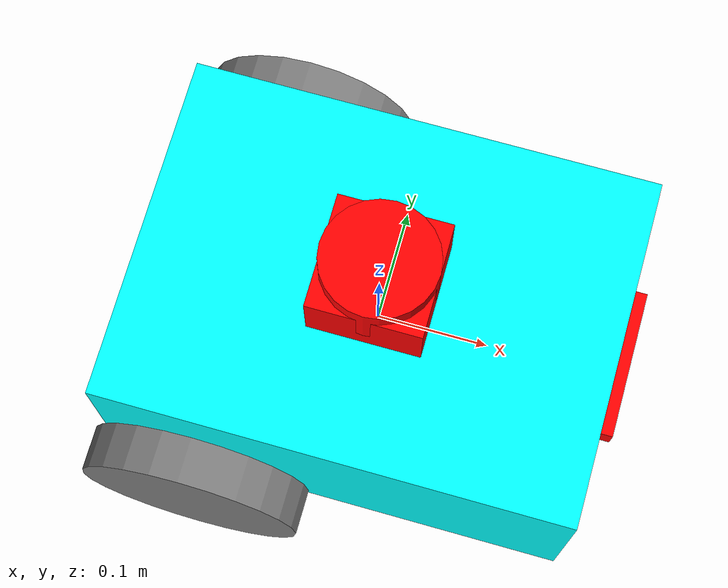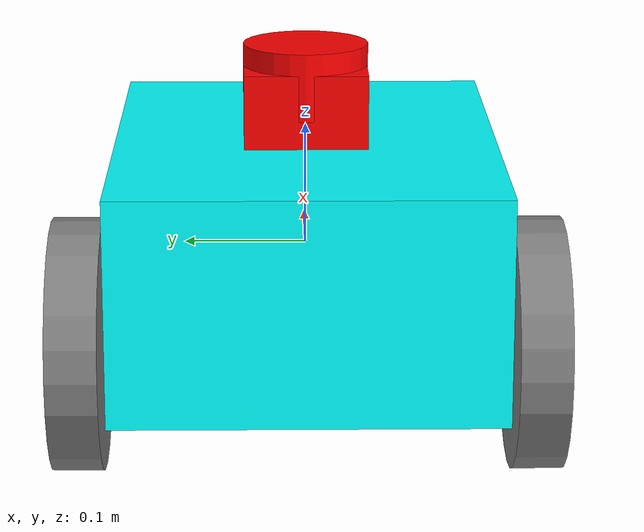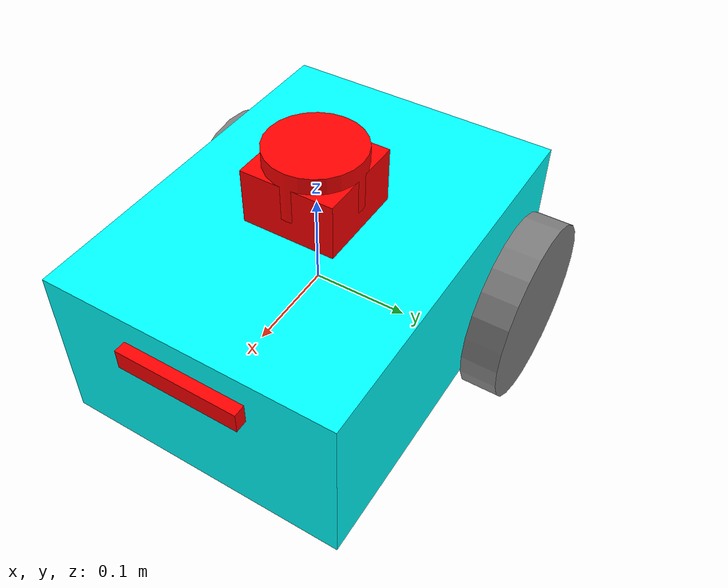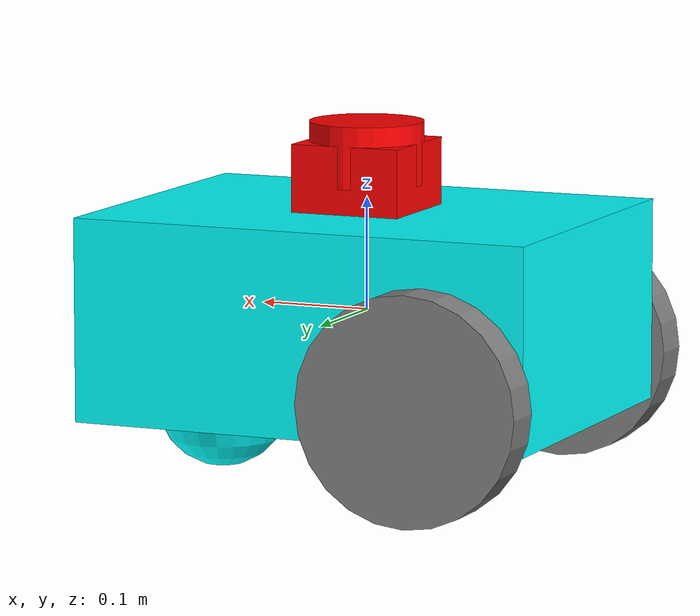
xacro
<?xml version="1.0"?>
<robot name="dif_bot" xmlns:xacro="http://ros.org/wiki/xacro">
  <xacro:include filename="robot.urdf.xacro"/>
  <xacro:include filename="sensors.xacro"/>
  <xacro:include filename="gz_sensors.xacro"/>
  <xacro:include filename="gz_physics.xacro"/>
  <xacro:include filename="gz_control.xacro"/>
</robot>

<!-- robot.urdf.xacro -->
<robot name="dif_bot" xmlns:xacro="http://ros.org/wiki/xacro">

  <!-- Propiedades del Robot -->
  <xacro:property name="base_width" value="0.31"/>
  <xacro:property name="base_length" value="0.42"/>
  <xacro:property name="base_height" value="0.18"/>
  <xacro:property name="wheel_radius" value="0.10"/>
  <xacro:property name="wheel_width" value="0.04"/>
  <xacro:property name="wheel_ygap" value="0.025"/>
  <xacro:property name="wheel_zoff" value="0.05"/>
  <xacro:property name="wheel_xoff" value="0.12"/>
  <xacro:property name="caster_xoff" value="0.14"/>

  <!-- Macros de Inercia -->
  <xacro:macro name="box_inertia" params="m w h d">
    <inertial>
      <origin xyz="0 0 0" rpy="${pi/2} 0 ${pi/2}"/>
      <mass value="${m}"/>
      <inertia ixx="${(m/12)*(h*h+d*d)}" ixy="0.0" ixz="0.0" iyy="${(m/12)*(w*w+d*d)}" iyz="0.0" izz="${(m/12)*(w*w+h*h)}"/>
    </inertial>
  </xacro:macro>

  <xacro:macro name="cylinder_inertia" params="m r h">
    <inertial>
      <origin xyz="0 0 0" rpy="${pi/2} 0 0"/>
      <mass value="${m}"/>
      <inertia ixx="${(m/12)*(3*r*r+h*h)}" ixy="0" ixz="0" iyy="${(m/12)*(3*r*r+h*h)}" iyz="0" izz="${(m/2)*(r*r)}"/>
    </inertial>
  </xacro:macro>

  <xacro:macro name="sphere_inertia" params="m r">
    <inertial>
      <mass value="${m}"/>
      <inertia ixx="${(2/5)*m*(r*r)}" ixy="0.0" ixz="0.0" iyy="${(2/5)*m*(r*r)}" iyz="0.0" izz="${(2/5)*m*(r*r)}"/>
    </inertial>
  </xacro:macro>

  <!-- Base Link (Chasis) -->
  <link name="base_link">
    <visual>
      <geometry>
        <box size="${base_length} ${base_width} ${base_height}"/>
      </geometry>
      <material name="Cyan">
        <color rgba="0 1.0 1.0 1.0"/>
      </material>
    </visual>
    <collision>
      <geometry>
        <box size="${base_length} ${base_width} ${base_height}"/>
      </geometry>
    </collision>
    <xacro:box_inertia m="15" w="${base_width}" d="${base_length}" h="${base_height}"/>
  </link>

  <!-- Base Footprint -->
  <link name="base_footprint"/>
  <joint name="base_joint" type="fixed">
    <parent link="base_link"/>
    <child link="base_footprint"/>
    <origin xyz="0.0 0.0 ${-(wheel_radius+wheel_zoff)}" rpy="0 0 0"/>
  </joint>

  <!-- Ruedas Traseras Tracción -->
  <xacro:macro name="wheel" params="prefix x_reflect y_reflect">
    <link name="${prefix}_link">
      <visual>
        <origin xyz="0 0 0" rpy="${pi/2} 0 0"/>
        <geometry>
          <cylinder radius="${wheel_radius}" length="${wheel_width}"/>
        </geometry>
        <material name="Gray">
          <color rgba="0.5 0.5 0.5 1.0"/>
        </material>
      </visual>
      <collision>
        <origin xyz="0 0 0" rpy="${pi/2} 0 0"/>
        <geometry>
          <cylinder radius="${wheel_radius}" length="${wheel_width}"/>
        </geometry>
      </collision>
      <xacro:cylinder_inertia m="0.5" r="${wheel_radius}" h="${wheel_width}"/>
    </link>

    <joint name="${prefix}_joint" type="continuous">
      <parent link="base_link"/>
      <child link="${prefix}_link"/>
      <origin xyz="${x_reflect*wheel_xoff} ${y_reflect*(base_width/2+wheel_ygap)} ${-wheel_zoff}" rpy="0 0 0"/>
      <axis xyz="0 1 0"/>
    </joint>
  </xacro:macro>

  <xacro:wheel prefix="drivewhl_l" x_reflect="-1" y_reflect="1"/>
  <xacro:wheel prefix="drivewhl_r" x_reflect="-1" y_reflect="-1"/>

  <!-- Rueda Caster Delantera -->
  <link name="front_caster">
    <visual>
      <geometry>
        <sphere radius="${wheel_radius+wheel_zoff-(base_height/2)}"/>
      </geometry>
      <material name="Cyan">
        <color rgba="0 1.0 1.0 1.0"/>
      </material>
    </visual>
    <collision>
      <geometry>
        <sphere radius="${wheel_radius+wheel_zoff-(base_height/2)}"/>
      </geometry>
    </collision>
    <xacro:sphere_inertia m="0.5" r="${wheel_radius+wheel_zoff-(base_height/2)}"/>
  </link>

  <joint name="caster_joint" type="fixed">
    <parent link="base_link"/>
    <child link="front_caster"/>
    <origin xyz="${caster_xoff} 0.0 ${-(base_height/2)}" rpy="0 0 0"/>
  </joint>

</robot>

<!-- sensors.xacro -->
<robot xmlns:xacro="http://www.ros.org/wiki/xacro">

  <!-- Sensor IMU -->
  <link name="imu_link">
    <visual>
      <geometry>
        <box size="0.1 0.1 0.1"/>
      </geometry>
      <material name="Red">
        <color rgba="1 0 0 1"/>
      </material>
    </visual>
    <collision>
      <geometry>
        <box size="0.1 0.1 0.1"/>
      </geometry>
    </collision>
    <xacro:box_inertia m="0.1" w="0.1" d="0.1" h="0.1"/>
  </link>

  <joint name="imu_joint" type="fixed">
    <parent link="base_link"/>
    <child link="imu_link"/>
    <origin xyz="0 0 0.1"/>
  </joint>

  <!-- Sensor LiDAR -->
  <link name="lidar_link">
    <visual>
      <geometry>
        <cylinder radius="0.0508" length="0.055"/>
      </geometry>
      <material name="Red">
        <color rgba="1 0 0 1"/>
      </material>
    </visual>
    <collision>
      <geometry>
        <cylinder radius="0.0508" length="0.055"/>
      </geometry>
    </collision>
    <inertial>
      <origin xyz="0 0 0"/>
      <mass value="0.125"/>
      <inertia ixx="0.001" ixy="0" ixz="0" iyy="0.001" iyz="0" izz="0.001"/>
    </inertial>
  </link>

  <joint name="lidar_joint" type="fixed">
    <parent link="base_link"/>
    <child link="lidar_link"/>
    <origin xyz="0 0 0.14"/>
  </joint>

  <!-- Cámara RGB-D -->
  <link name="camera_link">
    <visual>
      <geometry>
        <box size="0.015 0.130 0.022"/>
      </geometry>
      <material name="Red">
        <color rgba="1 0 0 1"/>
      </material>
    </visual>
    <collision>
      <geometry>
        <box size="0.015 0.130 0.022"/>
      </geometry>
    </collision>
    <inertial>
      <origin xyz="0 0 0"/>
      <mass value="0.035"/>
      <inertia ixx="0.001" ixy="0" ixz="0" iyy="0.001" iyz="0" izz="0.001"/>
    </inertial>
  </link>

  <joint name="camera_joint" type="fixed">
    <parent link="base_link"/>
    <child link="camera_link"/>
    <origin xyz="0.215 0 0.05"/>
  </joint>

  <link name="camera_depth_frame"/>
  <joint name="camera_depth_joint" type="fixed">
    <parent link="camera_link"/>
    <child link="camera_depth_frame"/>
    <origin xyz="0.002 0 0" rpy="0 0 0"/>
  </joint>

</robot>
